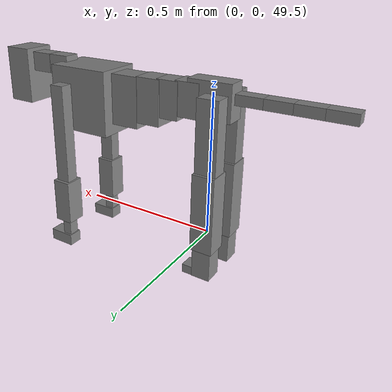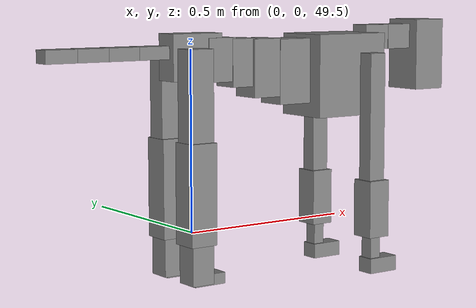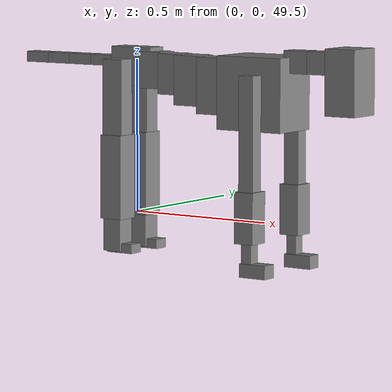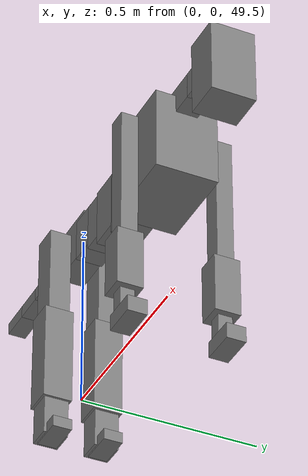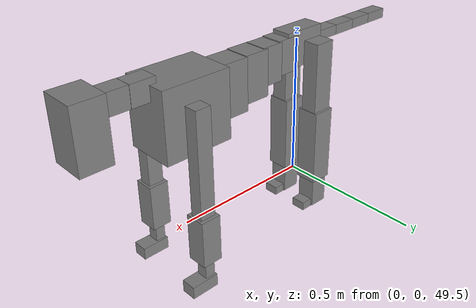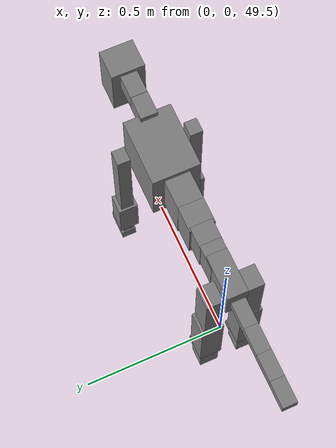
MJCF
<mujoco model="dog">

    <default>
        <joint armature="0.02" stiffness="1" damping="0.2" limited="true"/>
        <geom condim="3" friction="1 0.05 0.05" margin="0.01"/>
        <motor ctrllimited="true" ctrlrange="-1.0 1.0" forcelimited="true" gear="50"/>
    </default>

    <compiler inertiafromgeom="true" angle="radian"/>

    <option timestep="0.016" iterations="50" tolerance="1e-10" solver="Newton" jacobian="dense" cone="pyramidal"/>

    <size nconmax="20000" njmax="60000" nstack="5000000"/>
    <visual>
        <map force="0.1" zfar="30"/>
        <rgba haze="0.15 0.25 0.35 1"/>
        <quality shadowsize="2048"/>
        <global offwidth="800" offheight="800"/>
    </visual>

    <asset>
        <texture type="skybox" builtin="gradient" rgb1="0.3 0.5 0.7" rgb2="0 0 0" width="512" height="512"/>
        <texture name="texplane" type="2d" builtin="checker" rgb1=".2 .3 .4" rgb2=".1 0.15 0.2" width="512" height="512"
                 mark="cross" markrgb=".8 .8 .8"/>
        <texture name="texgeom" type="cube" builtin="flat" mark="cross" width="127" height="1278" rgb1="0.8 0.6 0.4"
                 rgb2="0.8 0.6 0.4" markrgb="1 1 1" random="0.01"/>

        <material name="matplane" reflectance="0.3" texture="texplane" texrepeat="1 1" texuniform="true"/>
        <material name="matgeom" texture="texgeom" texuniform="true" rgba="0.8 0.6 .4 1"/>
    </asset>

    <worldbody>
        <geom name="floor" pos="0 0 0" size="0 0 .25" type="plane" material="matplane" condim="3"/>

        <light directional="false" diffuse=".2 .2 .2" specular="0 0 0" pos="0 0 5" dir="0 0 -1" castshadow="false"/>
        <light mode="targetbodycom" target="torso" directional="false" diffuse=".8 .8 .8" specular="0.3 0.3 0.3"
               pos="0 0 4.0" dir="0 0 -1"/>

        <body name="root" pos="0 0 50">
            <freejoint name="root_1"/>
            <geom type="box" pos="0 0 -0.02" size="0.0774  0.0358  0.063" density="2030"/>

            <body name="spine1" pos="0.054 0 0">
                <joint name="spine1_y" axis="0 1 0" range="0 0.7" limited="true"/>
                <geom type="box" pos="0.02375 0 -0.03" size="0.04375  0.0375  0.05985" density="2030"/>

                <body name="spine2" pos="0.0612 0 0">
                    <joint name="spine2_y" axis="0 1 0" range="-0.15 0.15" limited="true"/>
                    <geom type="box" pos="0.03555  0  -0.04" size="0.04055  0.039  0.06615" density="2030"/>

                    <body name="spine3" pos="0.0730 0 0">
                        <joint name="spine3_y" axis="0 1 0" range="-0.15 0.15" limited="true"/>
                        <geom type="box" pos="0.03555  0  -0.057" size="0.04555  0.0445  0.081" density="2030"/>

                        <body name="spine4" pos="0.0780 0 0">
                            <joint name="spine4_y" axis="0 1 0" range="-0.15 0.15" limited="true"/>
                            <geom type="box" pos="0.05265  0  -0.07" size="0.05265  0.045  0.09135" density="2030"/>

                            <body name="torso" pos="0.1082 0 0">
                                <joint name="torso_y" axis="0 1 0" range="-0.15 0.15" limited="true"/>
                                <geom type="box" pos="0.11925  0  -0.085" size="0.11925  0.085  0.11745"
                                      density="2030"/>

                                <body name="neck1" pos="0.2160  0   0.0180">
                                    <joint name="neck1_y" axis="0 1 0" range="-1.2  -1" limited="true"/>
                                    <geom type="box" pos="0.0423  0  0" size="0.0423  0.03  0.036" density="2325"/>

                                    <body name="neck2" pos="0.0853  0  0">
                                        <joint name="neck2_y" axis="0 1 0" range="0.1  0" limited="true"/>
                                        <geom type="box" pos="0.0423  0  0" size="0.0423  0.03  0.036" density="2325"/>

                                        <body name="head" pos="0.0853  0  0">
                                            <joint name="head_y" axis="0 1 0" range="-0.3  -0.2" limited="true"/>
                                            <geom type="box" pos="0.0531  0  -0.055" size="0.0531  0.06  0.1044"
                                                  density="4030"/>

                                        </body>
                                    </body>
                                </body>

                                <body name="front_shoulder" pos="0.156  0   -0.0480">
                                    <joint name="front_shoulder_y" axis="0 1 0" range="-1 1.5" limited="true"/>
                                    <geom type="box" pos="0 0.13 -0.1682" size="0.0266  0.0228  0.1949" density="1158"/>
                                    <geom type="box" pos="0 -0.13 -0.1682" size="0.0266  0.0228  0.1949"
                                          density="1158"/>

                                    <body name="front_elbow" pos="0  0  -0.3364">
                                        <joint name="front_elbow_y" axis="0 1 0" range="-2 0" limited="true"/>
                                        <geom type="box" pos="0 0.13 -0.0817" size="0.0344  0.0351  0.0817"
                                              density="1081"/>
                                        <geom type="box" pos="0 -0.13 -0.0817" size="0.0344  0.0351  0.0817"
                                              density="1081"/>

                                        <body name="front_wrist" pos="0  0  -0.1634">
                                            <joint name="front_wrist_y" axis="0 1 0" range="-0.2 0" limited="true"/>
                                            <geom type="box" pos="0 0.13 -0.0390" size="0.0174  0.0193  0.0521"
                                                  density="1664"/>
                                            <geom type="box" pos="0 -0.13 -0.0390" size="0.0174  0.0193  0.0521"
                                                  density="1664"/>

                                            <body name="front_finger_end" pos="0  0  -0.0779">
                                                <joint name="front_finger_y" axis="0 1 0" range="-0.4 1"
                                                       limited="true"/>
                                                <geom type="box" pos="0.0261  0.13  -0.0066"
                                                      size="0.0478  0.0261  0.0216" density="1515"/>
                                                <geom type="box" pos="0.0261  -0.13  -0.0066"
                                                      size="0.0478  0.0261  0.0216" density="1515"/>

                                            </body>

                                        </body>
                                    </body>
                                </body>

                            </body>
                        </body>
                    </body>
                </body>
            </body>

            <body name="back_hip" pos="-0.03 0 -0.018">
                <joint name="back_hip_y" axis="0 1 0" range="-1.5 0.3" limited="true"/>
                <geom type="box" pos="0 0.07 -0.1201" size="0.0374  0.0294  0.1429" density="1154"/>
                <geom type="box" pos="0 -0.07 -0.1201" size="0.0374  0.0294  0.1429" density="1154"/>

                <body name="back_knee" pos="0  0  -0.2401">
                    <joint name="back_knee_y" axis="0 1 0" range="0 2.8" limited="true"/>
                    <geom type="box" pos="0 0.07 -0.1219" size="0.0398  0.0393  0.1374" density="1227"/>
                    <geom type="box" pos="0 -0.07 -0.1219" size="0.0398  0.0393  0.1374" density="1227"/>

                    <body name="back_ankle" pos="0  0  -0.2437">
                        <joint name="back_ankle_y" axis="0 1 0" range="-2.2 0" limited="true"/>
                        <geom type="box" pos="0 0.07 -0.0551" size="0.0330  0.0330  0.0663" density="1284"/>
                        <geom type="box" pos="0 -0.07 -0.0551" size="0.0330  0.0330  0.0663" density="1284"/>

                        <body name="back_toe_end" pos="0  0  -0.1102">
                            <joint name="back_toe_y" axis="0 1 0" range="-0.4 1" limited="true"/>
                            <geom type="box" pos="0.0259  0.07  -0.0004" size="0.0475  0.0259  0.0154" density="1515"/>
                            <geom type="box" pos="0.0259  -0.07  -0.0004" size="0.0475  0.0259  0.0154" density="1515"/>

                        </body>
                    </body>
                </body>
            </body>

            <body name="tail1" pos="-0.074 0 -0.006">
                <joint name="tail1_y" axis="0 1 0" range="-0.2 0.2" limited="true"/>
                <geom type="box" pos="-0.0536  0  0" size="0.045  0.025  0.0175" density="1587"/>

                <body name="tail2" pos="-0.09 0 0">
                    <joint name="tail2_y" axis="0 1 0" range="-0.2 0.2" limited="true"/>
                    <geom type="box" pos="-0.0536  0  0" size="0.045  0.025  0.0175" density="1587"/>

                    <body name="tail3" pos="-0.09 0 0">
                        <joint name="tail3_y" axis="0 1 0" range="-0.2 0.2" limited="true"/>
                        <geom type="box" pos="-0.0536  0  0" size="0.045  0.025  0.0175" density="1587"/>

                        <body name="tail4" pos="-0.09 0 0">
                            <joint name="tail4_y" axis="0 1 0" range="-0.2 0.2" limited="true"/>
                            <geom type="box" pos="-0.0536  0  0" size="0.045  0.025  0.0175" density="1587"/>

                        </body>
                    </body>
                </body>
            </body>
        </body>
    </worldbody>

    <actuator>
        <motor joint="spine1_y" forcerange="-150 150     "/>
        <motor joint="spine2_y" forcerange="-150 150     "/>
        <motor joint="spine3_y" forcerange="-150 150     "/>
        <motor joint="spine4_y" forcerange="-150 150     "/>
        <motor joint="torso_y" forcerange="-150 150     "/>
        <motor joint="neck1_y" forcerange="-100 100       "/>
        <motor joint="neck2_y" forcerange="-100 100       "/>
        <motor joint="head_y" forcerange="-150 150       "/>
        <motor joint="front_shoulder_y" forcerange="-125.18 126.67"/>
        <motor joint="front_elbow_y" forcerange="-196.11 159.30"/>
        <motor joint="front_wrist_y" forcerange="-88.66 65.97"/>
        <motor joint="front_finger_y" forcerange="-23.82 75.12"/>
        <motor joint="back_hip_y" forcerange="-301.05 290.52"/>
        <motor joint="back_knee_y" forcerange="-398.02 373.24"/>
        <motor joint="back_angle_y" forcerange="-225.28 203.16"/>
        <motor joint="back_toe_y" forcerange="-46.08 81.22"/>
        <motor joint="tail1_y" forcerange="-50 50     "/>
        <motor joint="tail2_y" forcerange="-50 50     "/>
        <motor joint="tail3_y" forcerange="-50 50     "/>
        <motor joint="tail4_y" forcerange="-50 50     "/>
    </actuator>
</mujoco>
